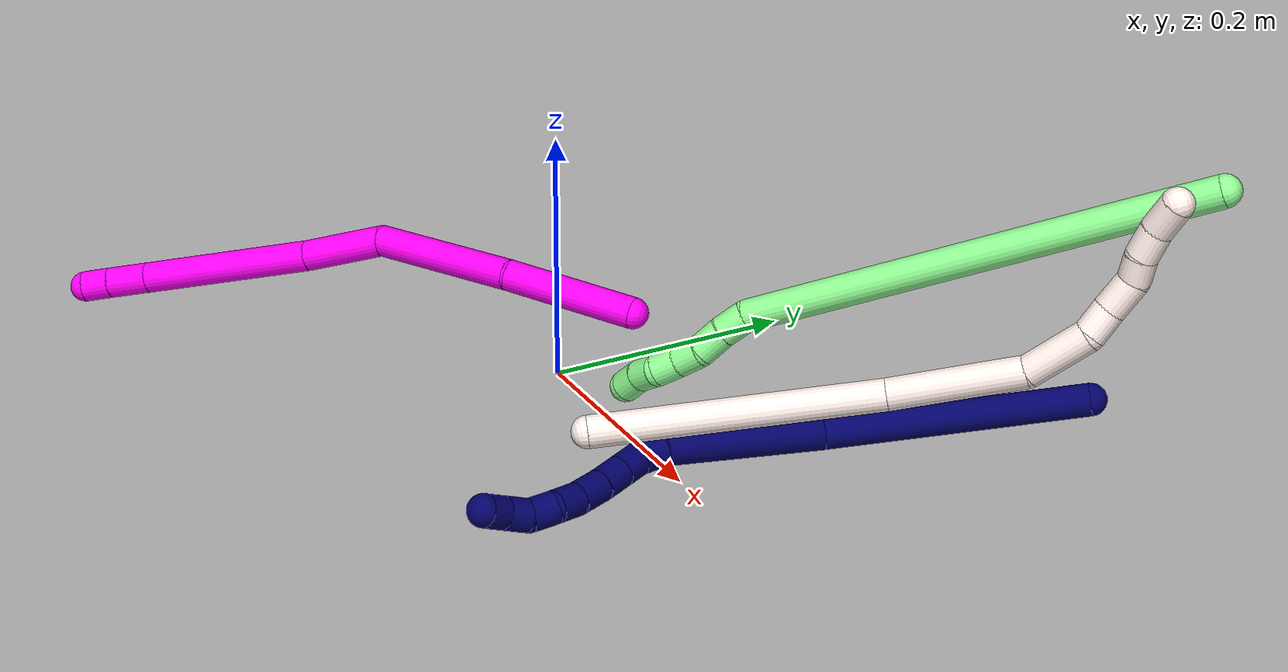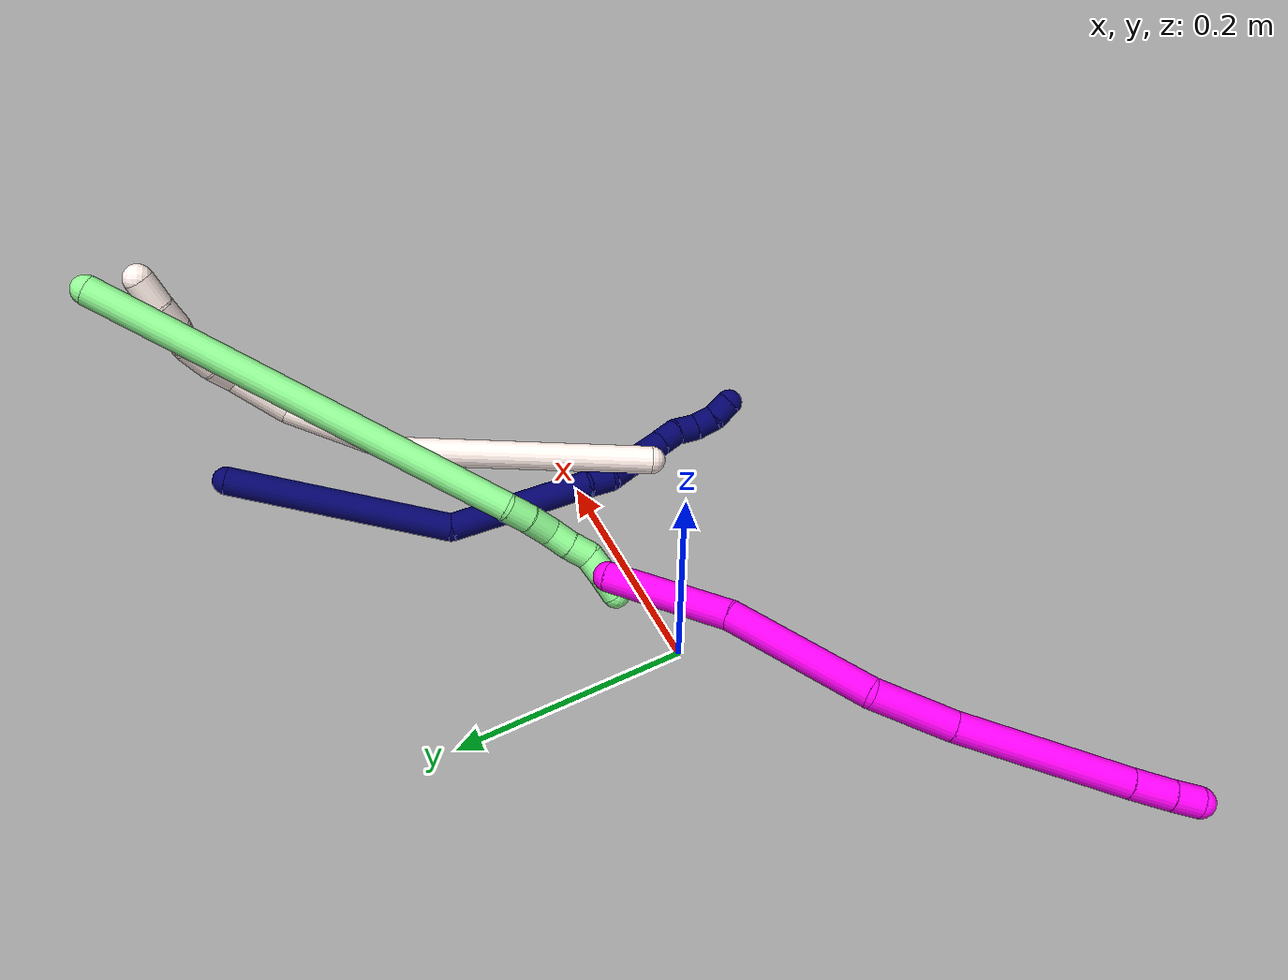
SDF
<sdf version="1.7">
 <world name="default">
  <model name="7">
   <static>0</static>
   <link name="7">
    <collision name="collision-cylinder-e_1_1_4">
     <pose>0.002598 -0.092489 -0.039218 1.97185 0.025853 0.03904</pose>
     <geometry><cylinder><radius>0.0125</radius><length>0.200987</length></cylinder></geometry>
     <surface>
      <friction><ode><mu>1.16</mu><mu2>1.16</mu2><slip1>0</slip1><slip2>0</slip2></ode></friction>
      <contact><ode><kp>1e+06</kp><kd>1</kd><max_vel>0</max_vel><min_depth>0.001</min_depth></ode></contact>
     </surface>
    </collision>
    <visual name="visual-cylinder-e_1_1_4">
     <pose>0.002598 -0.092489 -0.039218 1.97185 0.025853 0.03904</pose>
     <geometry><cylinder><radius>0.0125</radius><length>0.200987</length></cylinder></geometry>
     <material><ambient>0.003922 0 0.403922 1</ambient></material>
    </visual>
    <collision name="collision-cylinder-e_2_4_5">
     <pose>-0.023322 -0.241929 -0.089684 1.76578 -0.456618 -0.551094</pose>
     <geometry><cylinder><radius>0.0125</radius><length>0.129358</length></cylinder></geometry>
     <surface>
      <friction><ode><mu>1.16</mu><mu2>1.16</mu2><slip1>0</slip1><slip2>0</slip2></ode></friction>
      <contact><ode><kp>1e+06</kp><kd>1</kd><max_vel>0</max_vel><min_depth>0.001</min_depth></ode></contact>
     </surface>
    </collision>
    <visual name="visual-cylinder-e_2_4_5">
     <pose>-0.023322 -0.241929 -0.089684 1.76578 -0.456618 -0.551094</pose>
     <geometry><cylinder><radius>0.0125</radius><length>0.129358</length></cylinder></geometry>
     <material><ambient>0.003922 0 0.403922 1</ambient></material>
    </visual>
    <collision name="collision-cylinder-e_3_5_6">
     <pose>-0.05549 -0.309065 -0.100713 1.54938 -0.344062 -0.33691</pose>
     <geometry><cylinder><radius>0.0125</radius><length>0.02164</length></cylinder></geometry>
     <surface>
      <friction><ode><mu>1.16</mu><mu2>1.16</mu2><slip1>0</slip1><slip2>0</slip2></ode></friction>
      <contact><ode><kp>1e+06</kp><kd>1</kd><max_vel>0</max_vel><min_depth>0.001</min_depth></ode></contact>
     </surface>
    </collision>
    <visual name="visual-cylinder-e_3_5_6">
     <pose>-0.05549 -0.309065 -0.100713 1.54938 -0.344062 -0.33691</pose>
     <geometry><cylinder><radius>0.0125</radius><length>0.02164</length></cylinder></geometry>
     <material><ambient>0.003922 0 0.403922 1</ambient></material>
    </visual>
    <collision name="collision-cylinder-e_4_6_7">
     <pose>-0.064076 -0.327531 -0.096961 1.16744 -0.501439 -0.335145</pose>
     <geometry><cylinder><radius>0.0125</radius><length>0.020537</length></cylinder></geometry>
     <surface>
      <friction><ode><mu>1.16</mu><mu2>1.16</mu2><slip1>0</slip1><slip2>0</slip2></ode></friction>
      <contact><ode><kp>1e+06</kp><kd>1</kd><max_vel>0</max_vel><min_depth>0.001</min_depth></ode></contact>
     </surface>
    </collision>
    <visual name="visual-cylinder-e_4_6_7">
     <pose>-0.064076 -0.327531 -0.096961 1.16744 -0.501439 -0.335145</pose>
     <geometry><cylinder><radius>0.0125</radius><length>0.020537</length></cylinder></geometry>
     <material><ambient>0.003922 0 0.403922 1</ambient></material>
    </visual>
    <collision name="collision-cylinder-e_5_7_8">
     <pose>-0.074206 -0.34462 -0.08973 1.17337 -0.498037 -0.334929</pose>
     <geometry><cylinder><radius>0.0125</radius><length>0.021745</length></cylinder></geometry>
     <surface>
      <friction><ode><mu>1.16</mu><mu2>1.16</mu2><slip1>0</slip1><slip2>0</slip2></ode></friction>
      <contact><ode><kp>1e+06</kp><kd>1</kd><max_vel>0</max_vel><min_depth>0.001</min_depth></ode></contact>
     </surface>
    </collision>
    <visual name="visual-cylinder-e_5_7_8">
     <pose>-0.074206 -0.34462 -0.08973 1.17337 -0.498037 -0.334929</pose>
     <geometry><cylinder><radius>0.0125</radius><length>0.021745</length></cylinder></geometry>
     <material><ambient>0.003922 0 0.403922 1</ambient></material>
    </visual>
    <collision name="collision-cylinder-e_6_8_9">
     <pose>-0.085403 -0.363205 -0.082697 1.24201 -0.526388 -0.380865</pose>
     <geometry><cylinder><radius>0.0125</radius><length>0.023897</length></cylinder></geometry>
     <surface>
      <friction><ode><mu>1.16</mu><mu2>1.16</mu2><slip1>0</slip1><slip2>0</slip2></ode></friction>
      <contact><ode><kp>1e+06</kp><kd>1</kd><max_vel>0</max_vel><min_depth>0.001</min_depth></ode></contact>
     </surface>
    </collision>
    <visual name="visual-cylinder-e_6_8_9">
     <pose>-0.085403 -0.363205 -0.082697 1.24201 -0.526388 -0.380865</pose>
     <geometry><cylinder><radius>0.0125</radius><length>0.023897</length></cylinder></geometry>
     <material><ambient>0.003922 0 0.403922 1</ambient></material>
    </visual>
    <collision name="collision-cylinder-e_7_9_10">
     <pose>-0.097638 -0.381341 -0.077604 1.36353 -0.630374 -0.517383</pose>
     <geometry><cylinder><radius>0.0125</radius><length>0.021148</length></cylinder></geometry>
     <surface>
      <friction><ode><mu>1.16</mu><mu2>1.16</mu2><slip1>0</slip1><slip2>0</slip2></ode></friction>
      <contact><ode><kp>1e+06</kp><kd>1</kd><max_vel>0</max_vel><min_depth>0.001</min_depth></ode></contact>
     </surface>
    </collision>
    <visual name="visual-cylinder-e_7_9_10">
     <pose>-0.097638 -0.381341 -0.077604 1.36353 -0.630374 -0.517383</pose>
     <geometry><cylinder><radius>0.0125</radius><length>0.021148</length></cylinder></geometry>
     <material><ambient>0.003922 0 0.403922 1</ambient></material>
    </visual>
    <collision name="collision-cylinder-e_8_10_11">
     <pose>-0.107131 -0.399415 -0.075976 1.58416 -0.32371 -0.327988</pose>
     <geometry><cylinder><radius>0.0125</radius><length>0.020497</length></cylinder></geometry>
     <surface>
      <friction><ode><mu>1.16</mu><mu2>1.16</mu2><slip1>0</slip1><slip2>0</slip2></ode></friction>
      <contact><ode><kp>1e+06</kp><kd>1</kd><max_vel>0</max_vel><min_depth>0.001</min_depth></ode></contact>
     </surface>
    </collision>
    <visual name="visual-cylinder-e_8_10_11">
     <pose>-0.107131 -0.399415 -0.075976 1.58416 -0.32371 -0.327988</pose>
     <geometry><cylinder><radius>0.0125</radius><length>0.020497</length></cylinder></geometry>
     <material><ambient>0.003922 0 0.403922 1</ambient></material>
    </visual>
    <collision name="collision-cylinder-e_9_11_12">
     <pose>-0.116572 -0.416609 -0.07877 1.91308 -0.661549 -0.906206</pose>
     <geometry><cylinder><radius>0.0125</radius><length>0.020123</length></cylinder></geometry>
     <surface>
      <friction><ode><mu>1.16</mu><mu2>1.16</mu2><slip1>0</slip1><slip2>0</slip2></ode></friction>
      <contact><ode><kp>1e+06</kp><kd>1</kd><max_vel>0</max_vel><min_depth>0.001</min_depth></ode></contact>
     </surface>
    </collision>
    <visual name="visual-cylinder-e_9_11_12">
     <pose>-0.116572 -0.416609 -0.07877 1.91308 -0.661549 -0.906206</pose>
     <geometry><cylinder><radius>0.0125</radius><length>0.020123</length></cylinder></geometry>
     <material><ambient>0.003922 0 0.403922 1</ambient></material>
    </visual>
    <collision name="collision-cylinder-e_10_12_2">
     <pose>-0.130898 -0.429923 -0.081981 1.66409 -0.947081 -1.02495</pose>
     <geometry><cylinder><radius>0.0125</radius><length>0.020068</length></cylinder></geometry>
     <surface>
      <friction><ode><mu>1.16</mu><mu2>1.16</mu2><slip1>0</slip1><slip2>0</slip2></ode></friction>
      <contact><ode><kp>1e+06</kp><kd>1</kd><max_vel>0</max_vel><min_depth>0.001</min_depth></ode></contact>
     </surface>
    </collision>
    <visual name="visual-cylinder-e_10_12_2">
     <pose>-0.130898 -0.429923 -0.081981 1.66409 -0.947081 -1.02495</pose>
     <geometry><cylinder><radius>0.0125</radius><length>0.020068</length></cylinder></geometry>
     <material><ambient>0.003922 0 0.403922 1</ambient></material>
    </visual>
    <collision name="collision-sphere-2">
     <pose>-0.139043 -0.435758 -0.082527 0 -0 0</pose>
     <geometry><sphere><radius>0.0125</radius></sphere></geometry>
     <surface>
      <friction><ode><mu>1.16</mu><mu2>1.16</mu2><slip1>0</slip1><slip2>0</slip2></ode></friction>
      <contact><ode><kp>1e+06</kp><kd>1</kd><max_vel>0</max_vel><min_depth>0.001</min_depth></ode></contact>
     </surface>
    </collision>
    <visual name="visual-sphere-2">
     <pose>-0.139043 -0.435758 -0.082527 0 -0 0</pose>
     <geometry><sphere><radius>0.0125</radius></sphere></geometry>
     <material><ambient>0.003922 0 0.403922 1</ambient></material>
    </visual>
    <collision name="collision-sphere-12">
     <pose>-0.122753 -0.424088 -0.081435 0 -0 0</pose>
     <geometry><sphere><radius>0.0125</radius></sphere></geometry>
     <surface>
      <friction><ode><mu>1.16</mu><mu2>1.16</mu2><slip1>0</slip1><slip2>0</slip2></ode></friction>
      <contact><ode><kp>1e+06</kp><kd>1</kd><max_vel>0</max_vel><min_depth>0.001</min_depth></ode></contact>
     </surface>
    </collision>
    <visual name="visual-sphere-12">
     <pose>-0.122753 -0.424088 -0.081435 0 -0 0</pose>
     <geometry><sphere><radius>0.0125</radius></sphere></geometry>
     <material><ambient>0.003922 0 0.403922 1</ambient></material>
    </visual>
    <collision name="collision-sphere-11">
     <pose>-0.110391 -0.409131 -0.076105 0 -0 0</pose>
     <geometry><sphere><radius>0.0125</radius></sphere></geometry>
     <surface>
      <friction><ode><mu>1.16</mu><mu2>1.16</mu2><slip1>0</slip1><slip2>0</slip2></ode></friction>
      <contact><ode><kp>1e+06</kp><kd>1</kd><max_vel>0</max_vel><min_depth>0.001</min_depth></ode></contact>
     </surface>
    </collision>
    <visual name="visual-sphere-11">
     <pose>-0.110391 -0.409131 -0.076105 0 -0 0</pose>
     <geometry><sphere><radius>0.0125</radius></sphere></geometry>
     <material><ambient>0.003922 0 0.403922 1</ambient></material>
    </visual>
    <collision name="collision-sphere-10">
     <pose>-0.103871 -0.3897 -0.075846 0 -0 0</pose>
     <geometry><sphere><radius>0.0125</radius></sphere></geometry>
     <surface>
      <friction><ode><mu>1.16</mu><mu2>1.16</mu2><slip1>0</slip1><slip2>0</slip2></ode></friction>
      <contact><ode><kp>1e+06</kp><kd>1</kd><max_vel>0</max_vel><min_depth>0.001</min_depth></ode></contact>
     </surface>
    </collision>
    <visual name="visual-sphere-10">
     <pose>-0.103871 -0.3897 -0.075846 0 -0 0</pose>
     <geometry><sphere><radius>0.0125</radius></sphere></geometry>
     <material><ambient>0.003922 0 0.403922 1</ambient></material>
    </visual>
    <collision name="collision-sphere-9">
     <pose>-0.091406 -0.372982 -0.079361 0 -0 0</pose>
     <geometry><sphere><radius>0.0125</radius></sphere></geometry>
     <surface>
      <friction><ode><mu>1.16</mu><mu2>1.16</mu2><slip1>0</slip1><slip2>0</slip2></ode></friction>
      <contact><ode><kp>1e+06</kp><kd>1</kd><max_vel>0</max_vel><min_depth>0.001</min_depth></ode></contact>
     </surface>
    </collision>
    <visual name="visual-sphere-9">
     <pose>-0.091406 -0.372982 -0.079361 0 -0 0</pose>
     <geometry><sphere><radius>0.0125</radius></sphere></geometry>
     <material><ambient>0.003922 0 0.403922 1</ambient></material>
    </visual>
    <collision name="collision-sphere-4">
     <pose>0.005195 -0.184977 -0.078436 0 -0 0</pose>
     <geometry><sphere><radius>0.0125</radius></sphere></geometry>
     <surface>
      <friction><ode><mu>1.16</mu><mu2>1.16</mu2><slip1>0</slip1><slip2>0</slip2></ode></friction>
      <contact><ode><kp>1e+06</kp><kd>1</kd><max_vel>0</max_vel><min_depth>0.001</min_depth></ode></contact>
     </surface>
    </collision>
    <visual name="visual-sphere-4">
     <pose>0.005195 -0.184977 -0.078436 0 -0 0</pose>
     <geometry><sphere><radius>0.0125</radius></sphere></geometry>
     <material><ambient>0.003922 0 0.403922 1</ambient></material>
    </visual>
    <collision name="collision-sphere-1">
     <geometry><sphere><radius>0.0125</radius></sphere></geometry>
     <surface>
      <friction><ode><mu>1.16</mu><mu2>1.16</mu2><slip1>0</slip1><slip2>0</slip2></ode></friction>
      <contact><ode><kp>1e+06</kp><kd>1</kd><max_vel>0</max_vel><min_depth>0.001</min_depth></ode></contact>
     </surface>
    </collision>
    <visual name="visual-sphere-1">
     <geometry><sphere><radius>0.0125</radius></sphere></geometry>
     <material><ambient>0.003922 0 0.403922 1</ambient></material>
    </visual>
    <collision name="collision-sphere-8">
     <pose>-0.079399 -0.353427 -0.086033 0 -0 0</pose>
     <geometry><sphere><radius>0.0125</radius></sphere></geometry>
     <surface>
      <friction><ode><mu>1.16</mu><mu2>1.16</mu2><slip1>0</slip1><slip2>0</slip2></ode></friction>
      <contact><ode><kp>1e+06</kp><kd>1</kd><max_vel>0</max_vel><min_depth>0.001</min_depth></ode></contact>
     </surface>
    </collision>
    <visual name="visual-sphere-8">
     <pose>-0.079399 -0.353427 -0.086033 0 -0 0</pose>
     <geometry><sphere><radius>0.0125</radius></sphere></geometry>
     <material><ambient>0.003922 0 0.403922 1</ambient></material>
    </visual>
    <collision name="collision-sphere-5">
     <pose>-0.05184 -0.298882 -0.100932 0 -0 0</pose>
     <geometry><sphere><radius>0.0125</radius></sphere></geometry>
     <surface>
      <friction><ode><mu>1.16</mu><mu2>1.16</mu2><slip1>0</slip1><slip2>0</slip2></ode></friction>
      <contact><ode><kp>1e+06</kp><kd>1</kd><max_vel>0</max_vel><min_depth>0.001</min_depth></ode></contact>
     </surface>
    </collision>
    <visual name="visual-sphere-5">
     <pose>-0.05184 -0.298882 -0.100932 0 -0 0</pose>
     <geometry><sphere><radius>0.0125</radius></sphere></geometry>
     <material><ambient>0.003922 0 0.403922 1</ambient></material>
    </visual>
    <collision name="collision-sphere-6">
     <pose>-0.05914 -0.319249 -0.100495 0 -0 0</pose>
     <geometry><sphere><radius>0.0125</radius></sphere></geometry>
     <surface>
      <friction><ode><mu>1.16</mu><mu2>1.16</mu2><slip1>0</slip1><slip2>0</slip2></ode></friction>
      <contact><ode><kp>1e+06</kp><kd>1</kd><max_vel>0</max_vel><min_depth>0.001</min_depth></ode></contact>
     </surface>
    </collision>
    <visual name="visual-sphere-6">
     <pose>-0.05914 -0.319249 -0.100495 0 -0 0</pose>
     <geometry><sphere><radius>0.0125</radius></sphere></geometry>
     <material><ambient>0.003922 0 0.403922 1</ambient></material>
    </visual>
    <collision name="collision-sphere-7">
     <pose>-0.069012 -0.335812 -0.093427 0 -0 0</pose>
     <geometry><sphere><radius>0.0125</radius></sphere></geometry>
     <surface>
      <friction><ode><mu>1.16</mu><mu2>1.16</mu2><slip1>0</slip1><slip2>0</slip2></ode></friction>
      <contact><ode><kp>1e+06</kp><kd>1</kd><max_vel>0</max_vel><min_depth>0.001</min_depth></ode></contact>
     </surface>
    </collision>
    <visual name="visual-sphere-7">
     <pose>-0.069012 -0.335812 -0.093427 0 -0 0</pose>
     <geometry><sphere><radius>0.0125</radius></sphere></geometry>
     <material><ambient>0.003922 0 0.403922 1</ambient></material>
    </visual>
    <inertial>
     <pose>-0.035799 -0.22547 -0.068021 0 -0 0</pose>
     <mass>0.5</mass>
     <inertia>
      <ixx>0.000759</ixx>
      <ixy>0</ixy>
      <ixz>0</ixz>
      <iyy>-0.000349</iyy>
      <iyz>0</iyz>
      <izz>0.000868</izz>
     </inertia>
    </inertial>
   </link>
   <pose>0.310541 0.287462 0.050059 2.46351 0.890984 2.36248</pose>
  </model>
  <model name="10">
   <static>0</static>
   <link name="10">
    <collision name="collision-cylinder-e_1_1_4">
     <pose>-0.007457 -0.000494 0.053374 0.009246 -0.138799 -0.000643</pose>
     <geometry><cylinder><radius>0.0125</radius><length>0.10779</length></cylinder></geometry>
     <surface>
      <friction><ode><mu>1.16</mu><mu2>1.16</mu2><slip1>0</slip1><slip2>0</slip2></ode></friction>
      <contact><ode><kp>1e+06</kp><kd>1</kd><max_vel>0</max_vel><min_depth>0.001</min_depth></ode></contact>
     </surface>
    </collision>
    <visual name="visual-cylinder-e_1_1_4">
     <pose>-0.007457 -0.000494 0.053374 0.009246 -0.138799 -0.000643</pose>
     <geometry><cylinder><radius>0.0125</radius><length>0.10779</length></cylinder></geometry>
     <material><ambient>1 0 0.964706 1</ambient></material>
    </visual>
    <collision name="collision-cylinder-e_2_4_5">
     <pose>-0.032376 -0.009422 0.165905 0.141632 -0.284317 -0.020304</pose>
     <geometry><cylinder><radius>0.0125</radius><length>0.124509</length></cylinder></geometry>
     <surface>
      <friction><ode><mu>1.16</mu><mu2>1.16</mu2><slip1>0</slip1><slip2>0</slip2></ode></friction>
      <contact><ode><kp>1e+06</kp><kd>1</kd><max_vel>0</max_vel><min_depth>0.001</min_depth></ode></contact>
     </surface>
    </collision>
    <visual name="visual-cylinder-e_2_4_5">
     <pose>-0.032376 -0.009422 0.165905 0.141632 -0.284317 -0.020304</pose>
     <geometry><cylinder><radius>0.0125</radius><length>0.124509</length></cylinder></geometry>
     <material><ambient>1 0 0.964706 1</ambient></material>
    </visual>
    <collision name="collision-cylinder-e_3_5_6">
     <pose>-0.047392 -0.031421 0.255994 0.413272 0.072289 0.01516</pose>
     <geometry><cylinder><radius>0.0125</radius><length>0.067727</length></cylinder></geometry>
     <surface>
      <friction><ode><mu>1.16</mu><mu2>1.16</mu2><slip1>0</slip1><slip2>0</slip2></ode></friction>
      <contact><ode><kp>1e+06</kp><kd>1</kd><max_vel>0</max_vel><min_depth>0.001</min_depth></ode></contact>
     </surface>
    </collision>
    <visual name="visual-cylinder-e_3_5_6">
     <pose>-0.047392 -0.031421 0.255994 0.413272 0.072289 0.01516</pose>
     <geometry><cylinder><radius>0.0125</radius><length>0.067727</length></cylinder></geometry>
     <material><ambient>1 0 0.964706 1</ambient></material>
    </visual>
    <collision name="collision-cylinder-e_4_6_7">
     <pose>-0.037578 -0.06862 0.353999 0.338782 0.103237 0.017672</pose>
     <geometry><cylinder><radius>0.0125</radius><length>0.142992</length></cylinder></geometry>
     <surface>
      <friction><ode><mu>1.16</mu><mu2>1.16</mu2><slip1>0</slip1><slip2>0</slip2></ode></friction>
      <contact><ode><kp>1e+06</kp><kd>1</kd><max_vel>0</max_vel><min_depth>0.001</min_depth></ode></contact>
     </surface>
    </collision>
    <visual name="visual-cylinder-e_4_6_7">
     <pose>-0.037578 -0.06862 0.353999 0.338782 0.103237 0.017672</pose>
     <geometry><cylinder><radius>0.0125</radius><length>0.142992</length></cylinder></geometry>
     <material><ambient>1 0 0.964706 1</ambient></material>
    </visual>
    <collision name="collision-cylinder-e_5_7_8">
     <pose>-0.028009 -0.097655 0.437081 0.32533 0.129588 0.021296</pose>
     <geometry><cylinder><radius>0.0125</radius><length>0.034077</length></cylinder></geometry>
     <surface>
      <friction><ode><mu>1.16</mu><mu2>1.16</mu2><slip1>0</slip1><slip2>0</slip2></ode></friction>
      <contact><ode><kp>1e+06</kp><kd>1</kd><max_vel>0</max_vel><min_depth>0.001</min_depth></ode></contact>
     </surface>
    </collision>
    <visual name="visual-cylinder-e_5_7_8">
     <pose>-0.028009 -0.097655 0.437081 0.32533 0.129588 0.021296</pose>
     <geometry><cylinder><radius>0.0125</radius><length>0.034077</length></cylinder></geometry>
     <material><ambient>1 0 0.964706 1</ambient></material>
    </visual>
    <collision name="collision-cylinder-e_6_8_2">
     <pose>-0.023889 -0.106598 0.463811 0.319166 0.16822 0.027138</pose>
     <geometry><cylinder><radius>0.0125</radius><length>0.022906</length></cylinder></geometry>
     <surface>
      <friction><ode><mu>1.16</mu><mu2>1.16</mu2><slip1>0</slip1><slip2>0</slip2></ode></friction>
      <contact><ode><kp>1e+06</kp><kd>1</kd><max_vel>0</max_vel><min_depth>0.001</min_depth></ode></contact>
     </surface>
    </collision>
    <visual name="visual-cylinder-e_6_8_2">
     <pose>-0.023889 -0.106598 0.463811 0.319166 0.16822 0.027138</pose>
     <geometry><cylinder><radius>0.0125</radius><length>0.022906</length></cylinder></geometry>
     <material><ambient>1 0 0.964706 1</ambient></material>
    </visual>
    <collision name="collision-sphere-2">
     <pose>-0.021972 -0.110141 0.474532 0 -0 0</pose>
     <geometry><sphere><radius>0.0125</radius></sphere></geometry>
     <surface>
      <friction><ode><mu>1.16</mu><mu2>1.16</mu2><slip1>0</slip1><slip2>0</slip2></ode></friction>
      <contact><ode><kp>1e+06</kp><kd>1</kd><max_vel>0</max_vel><min_depth>0.001</min_depth></ode></contact>
     </surface>
    </collision>
    <visual name="visual-sphere-2">
     <pose>-0.021972 -0.110141 0.474532 0 -0 0</pose>
     <geometry><sphere><radius>0.0125</radius></sphere></geometry>
     <material><ambient>1 0 0.964706 1</ambient></material>
    </visual>
    <collision name="collision-sphere-4">
     <pose>-0.014913 -0.000987 0.106749 0 -0 0</pose>
     <geometry><sphere><radius>0.0125</radius></sphere></geometry>
     <surface>
      <friction><ode><mu>1.16</mu><mu2>1.16</mu2><slip1>0</slip1><slip2>0</slip2></ode></friction>
      <contact><ode><kp>1e+06</kp><kd>1</kd><max_vel>0</max_vel><min_depth>0.001</min_depth></ode></contact>
     </surface>
    </collision>
    <visual name="visual-sphere-4">
     <pose>-0.014913 -0.000987 0.106749 0 -0 0</pose>
     <geometry><sphere><radius>0.0125</radius></sphere></geometry>
     <material><ambient>1 0 0.964706 1</ambient></material>
    </visual>
    <collision name="collision-sphere-1">
     <geometry><sphere><radius>0.0125</radius></sphere></geometry>
     <surface>
      <friction><ode><mu>1.16</mu><mu2>1.16</mu2><slip1>0</slip1><slip2>0</slip2></ode></friction>
      <contact><ode><kp>1e+06</kp><kd>1</kd><max_vel>0</max_vel><min_depth>0.001</min_depth></ode></contact>
     </surface>
    </collision>
    <visual name="visual-sphere-1">
     <geometry><sphere><radius>0.0125</radius></sphere></geometry>
     <material><ambient>1 0 0.964706 1</ambient></material>
    </visual>
    <collision name="collision-sphere-8">
     <pose>-0.025807 -0.103055 0.45309 0 -0 0</pose>
     <geometry><sphere><radius>0.0125</radius></sphere></geometry>
     <surface>
      <friction><ode><mu>1.16</mu><mu2>1.16</mu2><slip1>0</slip1><slip2>0</slip2></ode></friction>
      <contact><ode><kp>1e+06</kp><kd>1</kd><max_vel>0</max_vel><min_depth>0.001</min_depth></ode></contact>
     </surface>
    </collision>
    <visual name="visual-sphere-8">
     <pose>-0.025807 -0.103055 0.45309 0 -0 0</pose>
     <geometry><sphere><radius>0.0125</radius></sphere></geometry>
     <material><ambient>1 0 0.964706 1</ambient></material>
    </visual>
    <collision name="collision-sphere-5">
     <pose>-0.049838 -0.017857 0.225062 0 -0 0</pose>
     <geometry><sphere><radius>0.0125</radius></sphere></geometry>
     <surface>
      <friction><ode><mu>1.16</mu><mu2>1.16</mu2><slip1>0</slip1><slip2>0</slip2></ode></friction>
      <contact><ode><kp>1e+06</kp><kd>1</kd><max_vel>0</max_vel><min_depth>0.001</min_depth></ode></contact>
     </surface>
    </collision>
    <visual name="visual-sphere-5">
     <pose>-0.049838 -0.017857 0.225062 0 -0 0</pose>
     <geometry><sphere><radius>0.0125</radius></sphere></geometry>
     <material><ambient>1 0 0.964706 1</ambient></material>
    </visual>
    <collision name="collision-sphere-6">
     <pose>-0.044946 -0.044986 0.286926 0 -0 0</pose>
     <geometry><sphere><radius>0.0125</radius></sphere></geometry>
     <surface>
      <friction><ode><mu>1.16</mu><mu2>1.16</mu2><slip1>0</slip1><slip2>0</slip2></ode></friction>
      <contact><ode><kp>1e+06</kp><kd>1</kd><max_vel>0</max_vel><min_depth>0.001</min_depth></ode></contact>
     </surface>
    </collision>
    <visual name="visual-sphere-6">
     <pose>-0.044946 -0.044986 0.286926 0 -0 0</pose>
     <geometry><sphere><radius>0.0125</radius></sphere></geometry>
     <material><ambient>1 0 0.964706 1</ambient></material>
    </visual>
    <collision name="collision-sphere-7">
     <pose>-0.030211 -0.092255 0.421072 0 -0 0</pose>
     <geometry><sphere><radius>0.0125</radius></sphere></geometry>
     <surface>
      <friction><ode><mu>1.16</mu><mu2>1.16</mu2><slip1>0</slip1><slip2>0</slip2></ode></friction>
      <contact><ode><kp>1e+06</kp><kd>1</kd><max_vel>0</max_vel><min_depth>0.001</min_depth></ode></contact>
     </surface>
    </collision>
    <visual name="visual-sphere-7">
     <pose>-0.030211 -0.092255 0.421072 0 -0 0</pose>
     <geometry><sphere><radius>0.0125</radius></sphere></geometry>
     <material><ambient>1 0 0.964706 1</ambient></material>
    </visual>
    <inertial>
     <pose>-0.029839 -0.037872 0.239769 0 -0 0</pose>
     <mass>0.5</mass>
     <inertia>
      <ixx>0.000549</ixx>
      <ixy>0</ixy>
      <ixz>0</ixz>
      <iyy>0.000533</iyy>
      <iyz>0</iyz>
      <izz>0.000189</izz>
     </inertia>
    </inertial>
   </link>
   <pose>0.054202 0.038405 0.067372 1.45975 0.065915 -0.777161</pose>
  </model>
  <model name="11">
   <static>0</static>
   <link name="11">
    <collision name="collision-cylinder-e_1_1_4">
     <pose>-0.002443 0.017254 0.109311 -0.156555 -0.022075 0.001732</pose>
     <geometry><cylinder><radius>0.0125</radius><length>0.221383</length></cylinder></geometry>
     <surface>
      <friction><ode><mu>1.16</mu><mu2>1.16</mu2><slip1>0</slip1><slip2>0</slip2></ode></friction>
      <contact><ode><kp>1e+06</kp><kd>1</kd><max_vel>0</max_vel><min_depth>0.001</min_depth></ode></contact>
     </surface>
    </collision>
    <visual name="visual-cylinder-e_1_1_4">
     <pose>-0.002443 0.017254 0.109311 -0.156555 -0.022075 0.001732</pose>
     <geometry><cylinder><radius>0.0125</radius><length>0.221383</length></cylinder></geometry>
     <material><ambient>1 0.933333 0.909804 1</ambient></material>
    </visual>
    <collision name="collision-cylinder-e_2_4_5">
     <pose>0.010103 0.046509 0.267754 -0.239561 0.288126 -0.034916</pose>
     <geometry><cylinder><radius>0.0125</radius><length>0.105501</length></cylinder></geometry>
     <surface>
      <friction><ode><mu>1.16</mu><mu2>1.16</mu2><slip1>0</slip1><slip2>0</slip2></ode></friction>
      <contact><ode><kp>1e+06</kp><kd>1</kd><max_vel>0</max_vel><min_depth>0.001</min_depth></ode></contact>
     </surface>
    </collision>
    <visual name="visual-cylinder-e_2_4_5">
     <pose>0.010103 0.046509 0.267754 -0.239561 0.288126 -0.034916</pose>
     <geometry><cylinder><radius>0.0125</radius><length>0.105501</length></cylinder></geometry>
     <material><ambient>1 0.933333 0.909804 1</ambient></material>
    </visual>
    <collision name="collision-cylinder-e_3_5_6">
     <pose>0.038041 0.05642 0.339541 0.09201 0.517438 0.024367</pose>
     <geometry><cylinder><radius>0.0125</radius><length>0.052356</length></cylinder></geometry>
     <surface>
      <friction><ode><mu>1.16</mu><mu2>1.16</mu2><slip1>0</slip1><slip2>0</slip2></ode></friction>
      <contact><ode><kp>1e+06</kp><kd>1</kd><max_vel>0</max_vel><min_depth>0.001</min_depth></ode></contact>
     </surface>
    </collision>
    <visual name="visual-cylinder-e_3_5_6">
     <pose>0.038041 0.05642 0.339541 0.09201 0.517438 0.024367</pose>
     <geometry><cylinder><radius>0.0125</radius><length>0.052356</length></cylinder></geometry>
     <material><ambient>1 0.933333 0.909804 1</ambient></material>
    </visual>
    <collision name="collision-cylinder-e_4_6_7">
     <pose>0.055958 0.048906 0.371249 0.539642 0.439971 0.123525</pose>
     <geometry><cylinder><radius>0.0125</radius><length>0.023329</length></cylinder></geometry>
     <surface>
      <friction><ode><mu>1.16</mu><mu2>1.16</mu2><slip1>0</slip1><slip2>0</slip2></ode></friction>
      <contact><ode><kp>1e+06</kp><kd>1</kd><max_vel>0</max_vel><min_depth>0.001</min_depth></ode></contact>
     </surface>
    </collision>
    <visual name="visual-cylinder-e_4_6_7">
     <pose>0.055958 0.048906 0.371249 0.539642 0.439971 0.123525</pose>
     <geometry><cylinder><radius>0.0125</radius><length>0.023329</length></cylinder></geometry>
     <material><ambient>1 0.933333 0.909804 1</ambient></material>
    </visual>
    <collision name="collision-cylinder-e_5_7_8">
     <pose>0.06904 0.038514 0.390534 0.452225 0.619657 0.147028</pose>
     <geometry><cylinder><radius>0.0125</radius><length>0.027943</length></cylinder></geometry>
     <surface>
      <friction><ode><mu>1.16</mu><mu2>1.16</mu2><slip1>0</slip1><slip2>0</slip2></ode></friction>
      <contact><ode><kp>1e+06</kp><kd>1</kd><max_vel>0</max_vel><min_depth>0.001</min_depth></ode></contact>
     </surface>
    </collision>
    <visual name="visual-cylinder-e_5_7_8">
     <pose>0.06904 0.038514 0.390534 0.452225 0.619657 0.147028</pose>
     <geometry><cylinder><radius>0.0125</radius><length>0.027943</length></cylinder></geometry>
     <material><ambient>1 0.933333 0.909804 1</ambient></material>
    </visual>
    <collision name="collision-cylinder-e_6_8_9">
     <pose>0.085293 0.028699 0.404474 0.91728 0.927497 0.484194</pose>
     <geometry><cylinder><radius>0.0125</radius><length>0.020344</length></cylinder></geometry>
     <surface>
      <friction><ode><mu>1.16</mu><mu2>1.16</mu2><slip1>0</slip1><slip2>0</slip2></ode></friction>
      <contact><ode><kp>1e+06</kp><kd>1</kd><max_vel>0</max_vel><min_depth>0.001</min_depth></ode></contact>
     </surface>
    </collision>
    <visual name="visual-cylinder-e_6_8_9">
     <pose>0.085293 0.028699 0.404474 0.91728 0.927497 0.484194</pose>
     <geometry><cylinder><radius>0.0125</radius><length>0.020344</length></cylinder></geometry>
     <material><ambient>1 0.933333 0.909804 1</ambient></material>
    </visual>
    <collision name="collision-cylinder-e_7_9_10">
     <pose>0.10178 0.019199 0.414678 0.622009 0.807249 0.272847</pose>
     <geometry><cylinder><radius>0.0125</radius><length>0.023112</length></cylinder></geometry>
     <surface>
      <friction><ode><mu>1.16</mu><mu2>1.16</mu2><slip1>0</slip1><slip2>0</slip2></ode></friction>
      <contact><ode><kp>1e+06</kp><kd>1</kd><max_vel>0</max_vel><min_depth>0.001</min_depth></ode></contact>
     </surface>
    </collision>
    <visual name="visual-cylinder-e_7_9_10">
     <pose>0.10178 0.019199 0.414678 0.622009 0.807249 0.272847</pose>
     <geometry><cylinder><radius>0.0125</radius><length>0.023112</length></cylinder></geometry>
     <material><ambient>1 0.933333 0.909804 1</ambient></material>
    </visual>
    <collision name="collision-cylinder-e_8_10_2">
     <pose>0.120428 0.011703 0.428605 0.364969 0.913062 0.180772</pose>
     <geometry><cylinder><radius>0.0125</radius><length>0.026032</length></cylinder></geometry>
     <surface>
      <friction><ode><mu>1.16</mu><mu2>1.16</mu2><slip1>0</slip1><slip2>0</slip2></ode></friction>
      <contact><ode><kp>1e+06</kp><kd>1</kd><max_vel>0</max_vel><min_depth>0.001</min_depth></ode></contact>
     </surface>
    </collision>
    <visual name="visual-cylinder-e_8_10_2">
     <pose>0.120428 0.011703 0.428605 0.364969 0.913062 0.180772</pose>
     <geometry><cylinder><radius>0.0125</radius><length>0.026032</length></cylinder></geometry>
     <material><ambient>1 0.933333 0.909804 1</ambient></material>
    </visual>
    <collision name="collision-sphere-2">
     <pose>0.130729 0.008863 0.436038 0 -0 0</pose>
     <geometry><sphere><radius>0.0125</radius></sphere></geometry>
     <surface>
      <friction><ode><mu>1.16</mu><mu2>1.16</mu2><slip1>0</slip1><slip2>0</slip2></ode></friction>
      <contact><ode><kp>1e+06</kp><kd>1</kd><max_vel>0</max_vel><min_depth>0.001</min_depth></ode></contact>
     </surface>
    </collision>
    <visual name="visual-sphere-2">
     <pose>0.130729 0.008863 0.436038 0 -0 0</pose>
     <geometry><sphere><radius>0.0125</radius></sphere></geometry>
     <material><ambient>1 0.933333 0.909804 1</ambient></material>
    </visual>
    <collision name="collision-sphere-10">
     <pose>0.110128 0.014543 0.421172 0 -0 0</pose>
     <geometry><sphere><radius>0.0125</radius></sphere></geometry>
     <surface>
      <friction><ode><mu>1.16</mu><mu2>1.16</mu2><slip1>0</slip1><slip2>0</slip2></ode></friction>
      <contact><ode><kp>1e+06</kp><kd>1</kd><max_vel>0</max_vel><min_depth>0.001</min_depth></ode></contact>
     </surface>
    </collision>
    <visual name="visual-sphere-10">
     <pose>0.110128 0.014543 0.421172 0 -0 0</pose>
     <geometry><sphere><radius>0.0125</radius></sphere></geometry>
     <material><ambient>1 0.933333 0.909804 1</ambient></material>
    </visual>
    <collision name="collision-sphere-9">
     <pose>0.093432 0.023855 0.408183 0 -0 0</pose>
     <geometry><sphere><radius>0.0125</radius></sphere></geometry>
     <surface>
      <friction><ode><mu>1.16</mu><mu2>1.16</mu2><slip1>0</slip1><slip2>0</slip2></ode></friction>
      <contact><ode><kp>1e+06</kp><kd>1</kd><max_vel>0</max_vel><min_depth>0.001</min_depth></ode></contact>
     </surface>
    </collision>
    <visual name="visual-sphere-9">
     <pose>0.093432 0.023855 0.408183 0 -0 0</pose>
     <geometry><sphere><radius>0.0125</radius></sphere></geometry>
     <material><ambient>1 0.933333 0.909804 1</ambient></material>
    </visual>
    <collision name="collision-sphere-4">
     <pose>-0.004887 0.034509 0.218623 0 -0 0</pose>
     <geometry><sphere><radius>0.0125</radius></sphere></geometry>
     <surface>
      <friction><ode><mu>1.16</mu><mu2>1.16</mu2><slip1>0</slip1><slip2>0</slip2></ode></friction>
      <contact><ode><kp>1e+06</kp><kd>1</kd><max_vel>0</max_vel><min_depth>0.001</min_depth></ode></contact>
     </surface>
    </collision>
    <visual name="visual-sphere-4">
     <pose>-0.004887 0.034509 0.218623 0 -0 0</pose>
     <geometry><sphere><radius>0.0125</radius></sphere></geometry>
     <material><ambient>1 0.933333 0.909804 1</ambient></material>
    </visual>
    <collision name="collision-sphere-1">
     <geometry><sphere><radius>0.0125</radius></sphere></geometry>
     <surface>
      <friction><ode><mu>1.16</mu><mu2>1.16</mu2><slip1>0</slip1><slip2>0</slip2></ode></friction>
      <contact><ode><kp>1e+06</kp><kd>1</kd><max_vel>0</max_vel><min_depth>0.001</min_depth></ode></contact>
     </surface>
    </collision>
    <visual name="visual-sphere-1">
     <geometry><sphere><radius>0.0125</radius></sphere></geometry>
     <material><ambient>1 0.933333 0.909804 1</ambient></material>
    </visual>
    <collision name="collision-sphere-8">
     <pose>0.077154 0.033544 0.400764 0 -0 0</pose>
     <geometry><sphere><radius>0.0125</radius></sphere></geometry>
     <surface>
      <friction><ode><mu>1.16</mu><mu2>1.16</mu2><slip1>0</slip1><slip2>0</slip2></ode></friction>
      <contact><ode><kp>1e+06</kp><kd>1</kd><max_vel>0</max_vel><min_depth>0.001</min_depth></ode></contact>
     </surface>
    </collision>
    <visual name="visual-sphere-8">
     <pose>0.077154 0.033544 0.400764 0 -0 0</pose>
     <geometry><sphere><radius>0.0125</radius></sphere></geometry>
     <material><ambient>1 0.933333 0.909804 1</ambient></material>
    </visual>
    <collision name="collision-sphere-5">
     <pose>0.025092 0.05851 0.316886 0 -0 0</pose>
     <geometry><sphere><radius>0.0125</radius></sphere></geometry>
     <surface>
      <friction><ode><mu>1.16</mu><mu2>1.16</mu2><slip1>0</slip1><slip2>0</slip2></ode></friction>
      <contact><ode><kp>1e+06</kp><kd>1</kd><max_vel>0</max_vel><min_depth>0.001</min_depth></ode></contact>
     </surface>
    </collision>
    <visual name="visual-sphere-5">
     <pose>0.025092 0.05851 0.316886 0 -0 0</pose>
     <geometry><sphere><radius>0.0125</radius></sphere></geometry>
     <material><ambient>1 0.933333 0.909804 1</ambient></material>
    </visual>
    <collision name="collision-sphere-6">
     <pose>0.05099 0.054329 0.362195 0 -0 0</pose>
     <geometry><sphere><radius>0.0125</radius></sphere></geometry>
     <surface>
      <friction><ode><mu>1.16</mu><mu2>1.16</mu2><slip1>0</slip1><slip2>0</slip2></ode></friction>
      <contact><ode><kp>1e+06</kp><kd>1</kd><max_vel>0</max_vel><min_depth>0.001</min_depth></ode></contact>
     </surface>
    </collision>
    <visual name="visual-sphere-6">
     <pose>0.05099 0.054329 0.362195 0 -0 0</pose>
     <geometry><sphere><radius>0.0125</radius></sphere></geometry>
     <material><ambient>1 0.933333 0.909804 1</ambient></material>
    </visual>
    <collision name="collision-sphere-7">
     <pose>0.060926 0.043484 0.380303 0 -0 0</pose>
     <geometry><sphere><radius>0.0125</radius></sphere></geometry>
     <surface>
      <friction><ode><mu>1.16</mu><mu2>1.16</mu2><slip1>0</slip1><slip2>0</slip2></ode></friction>
      <contact><ode><kp>1e+06</kp><kd>1</kd><max_vel>0</max_vel><min_depth>0.001</min_depth></ode></contact>
     </surface>
    </collision>
    <visual name="visual-sphere-7">
     <pose>0.060926 0.043484 0.380303 0 -0 0</pose>
     <geometry><sphere><radius>0.0125</radius></sphere></geometry>
     <material><ambient>1 0.933333 0.909804 1</ambient></material>
    </visual>
    <inertial>
     <pose>0.025948 0.03046 0.237537 0 -0 0</pose>
     <mass>0.5</mass>
     <inertia>
      <ixx>0.00104</ixx>
      <ixy>0</ixy>
      <ixz>0</ixz>
      <iyy>0.001025</iyy>
      <iyz>0</iyz>
      <izz>-0.000149</izz>
     </inertia>
    </inertial>
   </link>
   <pose>0.169733 -0.060931 0.042861 -1.22384 -0.864456 -0.580204</pose>
  </model>
  <model name="13">
   <static>0</static>
   <link name="13">
    <collision name="collision-cylinder-e_1_1_4">
     <pose>-5e-06 -1.6e-05 -0.1866 3.14151 -2.5e-05 -0.568688</pose>
     <geometry><cylinder><radius>0.0125</radius><length>0.373199</length></cylinder></geometry>
     <surface>
      <friction><ode><mu>1.16</mu><mu2>1.16</mu2><slip1>0</slip1><slip2>0</slip2></ode></friction>
      <contact><ode><kp>1e+06</kp><kd>1</kd><max_vel>0</max_vel><min_depth>0.001</min_depth></ode></contact>
     </surface>
    </collision>
    <visual name="visual-cylinder-e_1_1_4">
     <pose>-5e-06 -1.6e-05 -0.1866 3.14151 -2.5e-05 -0.568688</pose>
     <geometry><cylinder><radius>0.0125</radius><length>0.373199</length></cylinder></geometry>
     <material><ambient>0.564706 0.984314 0.572549 1</ambient></material>
    </visual>
    <collision name="collision-cylinder-e_2_4_5">
     <pose>-0.001883 -0.003247 -0.383755 2.84592 -0.168177 -1.03007</pose>
     <geometry><cylinder><radius>0.0125</radius><length>0.022383</length></cylinder></geometry>
     <surface>
      <friction><ode><mu>1.16</mu><mu2>1.16</mu2><slip1>0</slip1><slip2>0</slip2></ode></friction>
      <contact><ode><kp>1e+06</kp><kd>1</kd><max_vel>0</max_vel><min_depth>0.001</min_depth></ode></contact>
     </surface>
    </collision>
    <visual name="visual-cylinder-e_2_4_5">
     <pose>-0.001883 -0.003247 -0.383755 2.84592 -0.168177 -1.03007</pose>
     <geometry><cylinder><radius>0.0125</radius><length>0.022383</length></cylinder></geometry>
     <material><ambient>0.564706 0.984314 0.572549 1</ambient></material>
    </visual>
    <collision name="collision-cylinder-e_3_5_6">
     <pose>-0.00562 -0.011078 -0.405042 2.73545 -0.158205 -0.73496</pose>
     <geometry><cylinder><radius>0.0125</radius><length>0.023661</length></cylinder></geometry>
     <surface>
      <friction><ode><mu>1.16</mu><mu2>1.16</mu2><slip1>0</slip1><slip2>0</slip2></ode></friction>
      <contact><ode><kp>1e+06</kp><kd>1</kd><max_vel>0</max_vel><min_depth>0.001</min_depth></ode></contact>
     </surface>
    </collision>
    <visual name="visual-cylinder-e_3_5_6">
     <pose>-0.00562 -0.011078 -0.405042 2.73545 -0.158205 -0.73496</pose>
     <geometry><cylinder><radius>0.0125</radius><length>0.023661</length></cylinder></geometry>
     <material><ambient>0.564706 0.984314 0.572549 1</ambient></material>
    </visual>
    <collision name="collision-cylinder-e_4_6_7">
     <pose>-0.007133 -0.017609 -0.425814 2.95302 0.034291 0.358747</pose>
     <geometry><cylinder><radius>0.0125</radius><length>0.020455</length></cylinder></geometry>
     <surface>
      <friction><ode><mu>1.16</mu><mu2>1.16</mu2><slip1>0</slip1><slip2>0</slip2></ode></friction>
      <contact><ode><kp>1e+06</kp><kd>1</kd><max_vel>0</max_vel><min_depth>0.001</min_depth></ode></contact>
     </surface>
    </collision>
    <visual name="visual-cylinder-e_4_6_7">
     <pose>-0.007133 -0.017609 -0.425814 2.95302 0.034291 0.358747</pose>
     <geometry><cylinder><radius>0.0125</radius><length>0.020455</length></cylinder></geometry>
     <material><ambient>0.564706 0.984314 0.572549 1</ambient></material>
    </visual>
    <collision name="collision-cylinder-e_5_7_8">
     <pose>-0.007358 -0.020788 -0.445772 3.015 -0.057461 -0.851373</pose>
     <geometry><cylinder><radius>0.0125</radius><length>0.020028</length></cylinder></geometry>
     <surface>
      <friction><ode><mu>1.16</mu><mu2>1.16</mu2><slip1>0</slip1><slip2>0</slip2></ode></friction>
      <contact><ode><kp>1e+06</kp><kd>1</kd><max_vel>0</max_vel><min_depth>0.001</min_depth></ode></contact>
     </surface>
    </collision>
    <visual name="visual-cylinder-e_5_7_8">
     <pose>-0.007358 -0.020788 -0.445772 3.015 -0.057461 -0.851373</pose>
     <geometry><cylinder><radius>0.0125</radius><length>0.020028</length></cylinder></geometry>
     <material><ambient>0.564706 0.984314 0.572549 1</ambient></material>
    </visual>
    <collision name="collision-cylinder-e_6_8_9">
     <pose>-0.003726 -0.023606 -0.46471 2.97075 0.430752 2.39543</pose>
     <geometry><cylinder><radius>0.0125</radius><length>0.020148</length></cylinder></geometry>
     <surface>
      <friction><ode><mu>1.16</mu><mu2>1.16</mu2><slip1>0</slip1><slip2>0</slip2></ode></friction>
      <contact><ode><kp>1e+06</kp><kd>1</kd><max_vel>0</max_vel><min_depth>0.001</min_depth></ode></contact>
     </surface>
    </collision>
    <visual name="visual-cylinder-e_6_8_9">
     <pose>-0.003726 -0.023606 -0.46471 2.97075 0.430752 2.39543</pose>
     <geometry><cylinder><radius>0.0125</radius><length>0.020148</length></cylinder></geometry>
     <material><ambient>0.564706 0.984314 0.572549 1</ambient></material>
    </visual>
    <collision name="collision-cylinder-e_7_9_2">
     <pose>0.003657 -0.028843 -0.482541 2.74587 0.321228 1.35931</pose>
     <geometry><cylinder><radius>0.0125</radius><length>0.020125</length></cylinder></geometry>
     <surface>
      <friction><ode><mu>1.16</mu><mu2>1.16</mu2><slip1>0</slip1><slip2>0</slip2></ode></friction>
      <contact><ode><kp>1e+06</kp><kd>1</kd><max_vel>0</max_vel><min_depth>0.001</min_depth></ode></contact>
     </surface>
    </collision>
    <visual name="visual-cylinder-e_7_9_2">
     <pose>0.003657 -0.028843 -0.482541 2.74587 0.321228 1.35931</pose>
     <geometry><cylinder><radius>0.0125</radius><length>0.020125</length></cylinder></geometry>
     <material><ambient>0.564706 0.984314 0.572549 1</ambient></material>
    </visual>
    <collision name="collision-sphere-2">
     <pose>0.006834 -0.032523 -0.491351 0 -0 0</pose>
     <geometry><sphere><radius>0.0125</radius></sphere></geometry>
     <surface>
      <friction><ode><mu>1.16</mu><mu2>1.16</mu2><slip1>0</slip1><slip2>0</slip2></ode></friction>
      <contact><ode><kp>1e+06</kp><kd>1</kd><max_vel>0</max_vel><min_depth>0.001</min_depth></ode></contact>
     </surface>
    </collision>
    <visual name="visual-sphere-2">
     <pose>0.006834 -0.032523 -0.491351 0 -0 0</pose>
     <geometry><sphere><radius>0.0125</radius></sphere></geometry>
     <material><ambient>0.564706 0.984314 0.572549 1</ambient></material>
    </visual>
    <collision name="collision-sphere-9">
     <pose>0.00048 -0.025163 -0.473731 0 -0 0</pose>
     <geometry><sphere><radius>0.0125</radius></sphere></geometry>
     <surface>
      <friction><ode><mu>1.16</mu><mu2>1.16</mu2><slip1>0</slip1><slip2>0</slip2></ode></friction>
      <contact><ode><kp>1e+06</kp><kd>1</kd><max_vel>0</max_vel><min_depth>0.001</min_depth></ode></contact>
     </surface>
    </collision>
    <visual name="visual-sphere-9">
     <pose>0.00048 -0.025163 -0.473731 0 -0 0</pose>
     <geometry><sphere><radius>0.0125</radius></sphere></geometry>
     <material><ambient>0.564706 0.984314 0.572549 1</ambient></material>
    </visual>
    <collision name="collision-sphere-4">
     <pose>-9e-06 -3.2e-05 -0.373199 0 -0 0</pose>
     <geometry><sphere><radius>0.0125</radius></sphere></geometry>
     <surface>
      <friction><ode><mu>1.16</mu><mu2>1.16</mu2><slip1>0</slip1><slip2>0</slip2></ode></friction>
      <contact><ode><kp>1e+06</kp><kd>1</kd><max_vel>0</max_vel><min_depth>0.001</min_depth></ode></contact>
     </surface>
    </collision>
    <visual name="visual-sphere-4">
     <pose>-9e-06 -3.2e-05 -0.373199 0 -0 0</pose>
     <geometry><sphere><radius>0.0125</radius></sphere></geometry>
     <material><ambient>0.564706 0.984314 0.572549 1</ambient></material>
    </visual>
    <collision name="collision-sphere-1">
     <geometry><sphere><radius>0.0125</radius></sphere></geometry>
     <surface>
      <friction><ode><mu>1.16</mu><mu2>1.16</mu2><slip1>0</slip1><slip2>0</slip2></ode></friction>
      <contact><ode><kp>1e+06</kp><kd>1</kd><max_vel>0</max_vel><min_depth>0.001</min_depth></ode></contact>
     </surface>
    </collision>
    <visual name="visual-sphere-1">
     <geometry><sphere><radius>0.0125</radius></sphere></geometry>
     <material><ambient>0.564706 0.984314 0.572549 1</ambient></material>
    </visual>
    <collision name="collision-sphere-8">
     <pose>-0.007933 -0.02205 -0.45569 0 -0 0</pose>
     <geometry><sphere><radius>0.0125</radius></sphere></geometry>
     <surface>
      <friction><ode><mu>1.16</mu><mu2>1.16</mu2><slip1>0</slip1><slip2>0</slip2></ode></friction>
      <contact><ode><kp>1e+06</kp><kd>1</kd><max_vel>0</max_vel><min_depth>0.001</min_depth></ode></contact>
     </surface>
    </collision>
    <visual name="visual-sphere-8">
     <pose>-0.007933 -0.02205 -0.45569 0 -0 0</pose>
     <geometry><sphere><radius>0.0125</radius></sphere></geometry>
     <material><ambient>0.564706 0.984314 0.572549 1</ambient></material>
    </visual>
    <collision name="collision-sphere-5">
     <pose>-0.003756 -0.006462 -0.39431 0 -0 0</pose>
     <geometry><sphere><radius>0.0125</radius></sphere></geometry>
     <surface>
      <friction><ode><mu>1.16</mu><mu2>1.16</mu2><slip1>0</slip1><slip2>0</slip2></ode></friction>
      <contact><ode><kp>1e+06</kp><kd>1</kd><max_vel>0</max_vel><min_depth>0.001</min_depth></ode></contact>
     </surface>
    </collision>
    <visual name="visual-sphere-5">
     <pose>-0.003756 -0.006462 -0.39431 0 -0 0</pose>
     <geometry><sphere><radius>0.0125</radius></sphere></geometry>
     <material><ambient>0.564706 0.984314 0.572549 1</ambient></material>
    </visual>
    <collision name="collision-sphere-6">
     <pose>-0.007484 -0.015693 -0.415774 0 -0 0</pose>
     <geometry><sphere><radius>0.0125</radius></sphere></geometry>
     <surface>
      <friction><ode><mu>1.16</mu><mu2>1.16</mu2><slip1>0</slip1><slip2>0</slip2></ode></friction>
      <contact><ode><kp>1e+06</kp><kd>1</kd><max_vel>0</max_vel><min_depth>0.001</min_depth></ode></contact>
     </surface>
    </collision>
    <visual name="visual-sphere-6">
     <pose>-0.007484 -0.015693 -0.415774 0 -0 0</pose>
     <geometry><sphere><radius>0.0125</radius></sphere></geometry>
     <material><ambient>0.564706 0.984314 0.572549 1</ambient></material>
    </visual>
    <collision name="collision-sphere-7">
     <pose>-0.006782 -0.019525 -0.435855 0 -0 0</pose>
     <geometry><sphere><radius>0.0125</radius></sphere></geometry>
     <surface>
      <friction><ode><mu>1.16</mu><mu2>1.16</mu2><slip1>0</slip1><slip2>0</slip2></ode></friction>
      <contact><ode><kp>1e+06</kp><kd>1</kd><max_vel>0</max_vel><min_depth>0.001</min_depth></ode></contact>
     </surface>
    </collision>
    <visual name="visual-sphere-7">
     <pose>-0.006782 -0.019525 -0.435855 0 -0 0</pose>
     <geometry><sphere><radius>0.0125</radius></sphere></geometry>
     <material><ambient>0.564706 0.984314 0.572549 1</ambient></material>
    </visual>
    <inertial>
     <pose>-0.000943 -0.004347 -0.249049 0 -0 0</pose>
     <mass>0.5</mass>
     <inertia>
      <ixx>0.001325</ixx>
      <ixy>0</ixy>
      <ixz>0</ixz>
      <iyy>-0.00601</iyy>
      <iyz>0</iyz>
      <izz>-3.6e-05</izz>
     </inertia>
    </inertial>
   </link>
   <pose>0.380067 0.336121 0.235976 1.1707 0.055992 2.34708</pose>
  </model>
 </world>
</sdf>
